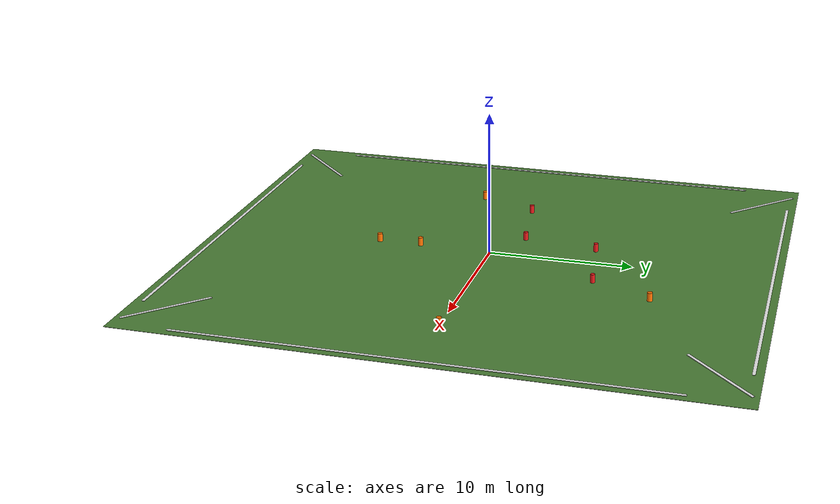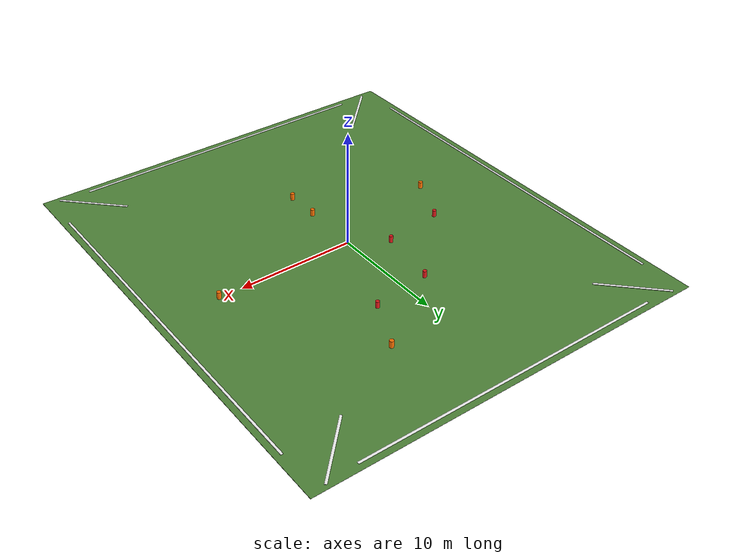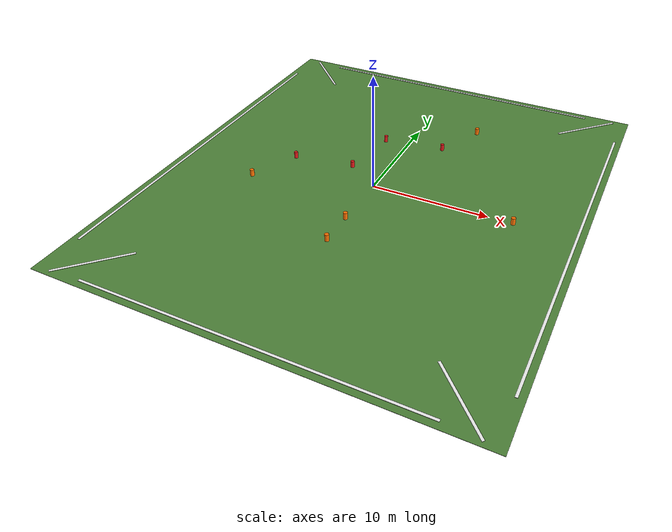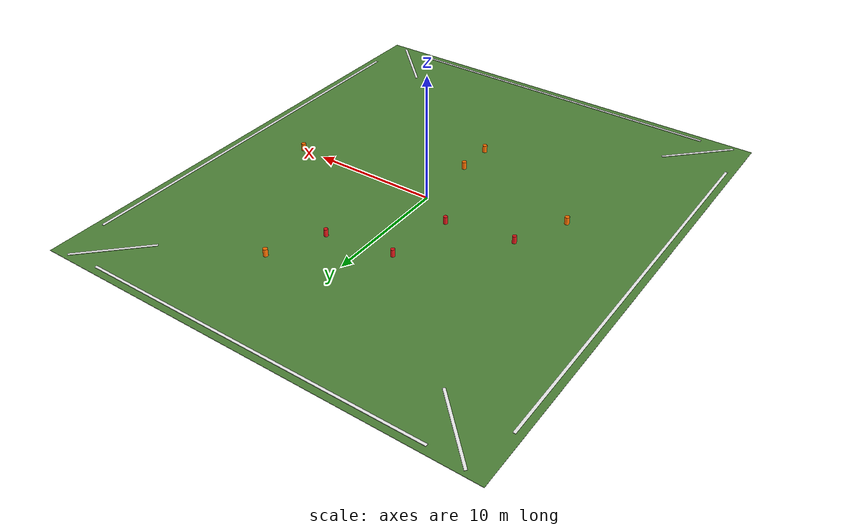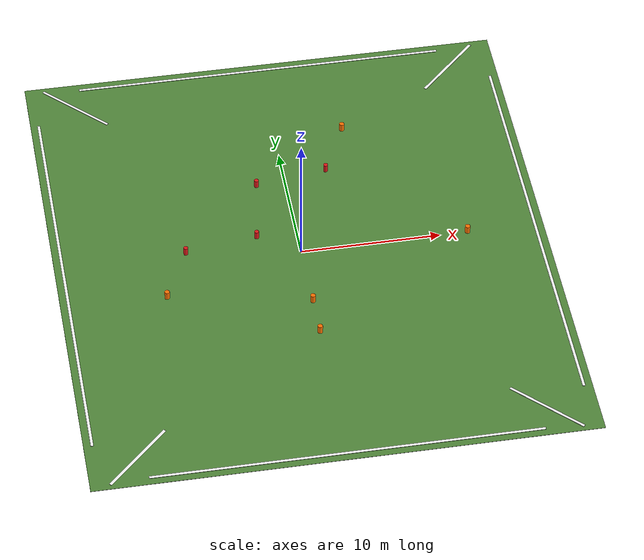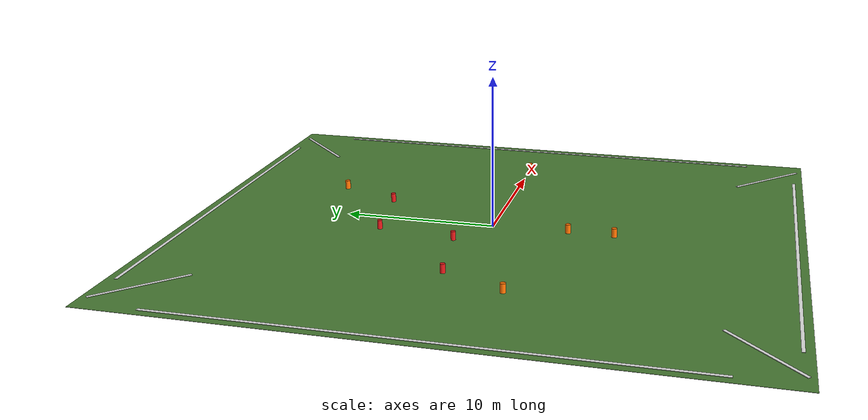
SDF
<?xml version="1.0" ?>
<sdf version="1.6">
  <world name="uwa_oval">

    <gravity>0 0 -9.8</gravity>
    <magnetic_field>6e-06 2.3e-05 -4.2e-05</magnetic_field>
    <physics type="ode">
      <max_step_size>0.001</max_step_size>
      <real_time_factor>1</real_time_factor>
      <real_time_update_rate>1000</real_time_update_rate>
    </physics>

    <plugin filename="gz-sim-sensors-system"
            name="gz::sim::systems::Sensors">
      <render_engine>ogre2</render_engine>
    </plugin>

    <scene>
      <ambient>0.5 0.5 0.5 1</ambient>
      <background>0.6 0.8 1.0 1</background>
      <shadows>true</shadows>
    </scene>

    <light name="sun" type="directional">
      <cast_shadows>true</cast_shadows>
      <pose>0 0 30 0 0 0</pose>
      <diffuse>0.9 0.9 0.9 1</diffuse>
      <specular>0.2 0.2 0.2 1</specular>
      <attenuation>
        <range>1000</range>
        <constant>0.9</constant>
        <linear>0.01</linear>
        <quadratic>0.001</quadratic>
      </attenuation>
      <direction>-0.35 0.2 -0.9</direction>
    </light>

    <!-- ═══════════════════════════════════════════════════════
         GROUND — 35 m (X) × 40 m (Y) grass surface
         ═══════════════════════════════════════════════════════ -->
    <model name="ground">
      <static>true</static>
      <link name="ground_link">
        <collision name="ground_collision">
          <geometry>
            <box><size>35 40 0.02</size></box>
          </geometry>
        </collision>
        <visual name="ground_visual">
          <geometry>
            <box><size>35 40 0.02</size></box>
          </geometry>
          <material>
            <!-- Grass green -->
            <ambient>0.28 0.48 0.20 1</ambient>
            <diffuse>0.33 0.55 0.24 1</diffuse>
            <specular>0.05 0.05 0.05 1</specular>
          </material>
        </visual>
      </link>
    </model>

    <model name="boundary">
      <static>true</static>
      <link name="boundary_link">

        <!-- Long sides (Y axis) -->
        <visual name="east_line">
          <pose>16.9 0 0.02 0 0 0</pose>
          <geometry><box><size>0.2 32 0.04</size></box></geometry>
          <material><ambient>1 1 1 1</ambient><diffuse>1 1 1 1</diffuse></material>
        </visual>
        <visual name="west_line">
          <pose>-16.9 0 0.02 0 0 0</pose>
          <geometry><box><size>0.2 32 0.04</size></box></geometry>
          <material><ambient>1 1 1 1</ambient><diffuse>1 1 1 1</diffuse></material>
        </visual>

        <!-- Short ends (X axis) -->
        <visual name="north_line">
          <pose>0 19.4 0.02 0 0 0</pose>
          <geometry><box><size>27 0.2 0.04</size></box></geometry>
          <material><ambient>1 1 1 1</ambient><diffuse>1 1 1 1</diffuse></material>
        </visual>
        <visual name="south_line">
          <pose>0 -19.4 0.02 0 0 0</pose>
          <geometry><box><size>27 0.2 0.04</size></box></geometry>
          <material><ambient>1 1 1 1</ambient><diffuse>1 1 1 1</diffuse></material>
        </visual>

        <!-- NE corner -->
        <visual name="corner_ne">
          <pose>14.0 17.5 0.02 0 0 -0.7854</pose>
          <geometry><box><size>0.2 6.0 0.04</size></box></geometry>
          <material><ambient>1 1 1 1</ambient><diffuse>1 1 1 1</diffuse></material>
        </visual>
        <!-- NW corner -->
        <visual name="corner_nw">
          <pose>-14.0 17.5 0.02 0 0 0.7854</pose>
          <geometry><box><size>0.2 6.0 0.04</size></box></geometry>
          <material><ambient>1 1 1 1</ambient><diffuse>1 1 1 1</diffuse></material>
        </visual>
        <!-- SE corner -->
        <visual name="corner_se">
          <pose>14.0 -17.5 0.02 0 0 0.7854</pose>
          <geometry><box><size>0.2 6.0 0.04</size></box></geometry>
          <material><ambient>1 1 1 1</ambient><diffuse>1 1 1 1</diffuse></material>
        </visual>
        <!-- SW corner -->
        <visual name="corner_sw">
          <pose>-14.0 -17.5 0.02 0 0 -0.7854</pose>
          <geometry><box><size>0.2 6.0 0.04</size></box></geometry>
          <material><ambient>1 1 1 1</ambient><diffuse>1 1 1 1</diffuse></material>
        </visual>

      </link>
    </model>

    <!-- wp1: (0, -8)  — 10.0 m from robot -->
    <model name="orange_cone_wp1">
      <static>true</static>
      <pose>0.0 -8.0 0 0 0 0</pose>
      <link name="link">
        <collision name="col">
          <pose>0 0 0.3 0 0 0</pose>
          <geometry><cylinder><radius>0.18</radius><length>0.6</length></cylinder></geometry>
        </collision>
        <visual name="vis">
          <pose>0 0 0.3 0 0 0</pose>
          <geometry><cylinder><radius>0.18</radius><length>0.6</length></cylinder></geometry>
          <material>
            <ambient>1.0 0.45 0.0 1</ambient>
            <diffuse>1.0 0.45 0.0 1</diffuse>
            <specular>0.2 0.2 0.2 1</specular>
          </material>
        </visual>
      </link>
    </model>

    <!-- wp2: (12, 0)  — 14.4 m from wp1 -->
    <model name="orange_cone_wp2">
      <static>true</static>
      <pose>12.0 0.0 0 0 0 0</pose>
      <link name="link">
        <collision name="col">
          <pose>0 0 0.3 0 0 0</pose>
          <geometry><cylinder><radius>0.18</radius><length>0.6</length></cylinder></geometry>
        </collision>
        <visual name="vis">
          <pose>0 0 0.3 0 0 0</pose>
          <geometry><cylinder><radius>0.18</radius><length>0.6</length></cylinder></geometry>
          <material>
            <ambient>1.0 0.45 0.0 1</ambient>
            <diffuse>1.0 0.45 0.0 1</diffuse>
            <specular>0.2 0.2 0.2 1</specular>
          </material>
        </visual>
      </link>
    </model>

    <!-- wp3: (5, 12)  — 13.9 m from wp2 -->
    <model name="orange_cone_wp3">
      <static>true</static>
      <pose>5.0 12.0 0 0 0 0</pose>
      <link name="link">
        <collision name="col">
          <pose>0 0 0.3 0 0 0</pose>
          <geometry><cylinder><radius>0.18</radius><length>0.6</length></cylinder></geometry>
        </collision>
        <visual name="vis">
          <pose>0 0 0.3 0 0 0</pose>
          <geometry><cylinder><radius>0.18</radius><length>0.6</length></cylinder></geometry>
          <material>
            <ambient>1.0 0.45 0.0 1</ambient>
            <diffuse>1.0 0.45 0.0 1</diffuse>
            <specular>0.2 0.2 0.2 1</specular>
          </material>
        </visual>
      </link>
    </model>

    <!-- wp4: (-10, -3) — 21.2 m from wp3  ← LARGER GAP / slalom zone -->
    <model name="orange_cone_wp4">
      <static>true</static>
      <pose>-10.0 -3.0 0 0 0 0</pose>
      <link name="link">
        <collision name="col">
          <pose>0 0 0.3 0 0 0</pose>
          <geometry><cylinder><radius>0.18</radius><length>0.6</length></cylinder></geometry>
        </collision>
        <visual name="vis">
          <pose>0 0 0.3 0 0 0</pose>
          <geometry><cylinder><radius>0.18</radius><length>0.6</length></cylinder></geometry>
          <material>
            <ambient>1.0 0.45 0.0 1</ambient>
            <diffuse>1.0 0.45 0.0 1</diffuse>
            <specular>0.2 0.2 0.2 1</specular>
          </material>
        </visual>
      </link>
    </model>

    <!-- wp5: (0, -5)  — 10.2 m from wp4 -->
    <model name="orange_cone_wp5">
      <static>true</static>
      <pose>0.0 -5.0 0 0 0 0</pose>
      <link name="link">
        <collision name="col">
          <pose>0 0 0.3 0 0 0</pose>
          <geometry><cylinder><radius>0.18</radius><length>0.6</length></cylinder></geometry>
        </collision>
        <visual name="vis">
          <pose>0 0 0.3 0 0 0</pose>
          <geometry><cylinder><radius>0.18</radius><length>0.6</length></cylinder></geometry>
          <material>
            <ambient>1.0 0.45 0.0 1</ambient>
            <diffuse>1.0 0.45 0.0 1</diffuse>
            <specular>0.2 0.2 0.2 1</specular>
          </material>
        </visual>
      </link>
    </model>

    <!-- rc1: t=0.20 right offset (+1.5 m) -->
    <model name="red_cone_1">
      <static>true</static>
      <pose>3.1 7.9 0 0 0 0</pose>
      <link name="link">
        <collision name="col">
          <pose>0 0 0.3 0 0 0</pose>
          <geometry><cylinder><radius>0.16</radius><length>0.6</length></cylinder></geometry>
        </collision>
        <visual name="vis">
          <pose>0 0 0.3 0 0 0</pose>
          <geometry><cylinder><radius>0.16</radius><length>0.6</length></cylinder></geometry>
          <material>
            <ambient>0.9 0.1 0.1 1</ambient>
            <diffuse>0.9 0.1 0.1 1</diffuse>
            <specular>0.2 0.2 0.2 1</specular>
          </material>
        </visual>
      </link>
    </model>

    <!-- rc2: t=0.40 left offset (-1.5 m) -->
    <model name="red_cone_2">
      <static>true</static>
      <pose>-2.1 7.1 0 0 0 0</pose>
      <link name="link">
        <collision name="col">
          <pose>0 0 0.3 0 0 0</pose>
          <geometry><cylinder><radius>0.16</radius><length>0.6</length></cylinder></geometry>
        </collision>
        <visual name="vis">
          <pose>0 0 0.3 0 0 0</pose>
          <geometry><cylinder><radius>0.16</radius><length>0.6</length></cylinder></geometry>
          <material>
            <ambient>0.9 0.1 0.1 1</ambient>
            <diffuse>0.9 0.1 0.1 1</diffuse>
            <specular>0.2 0.2 0.2 1</specular>
          </material>
        </visual>
      </link>
    </model>

    <!-- rc3: t=0.60 right offset (+1.5 m) -->
    <model name="red_cone_3">
      <static>true</static>
      <pose>-2.9 1.9 0 0 0 0</pose>
      <link name="link">
        <collision name="col">
          <pose>0 0 0.3 0 0 0</pose>
          <geometry><cylinder><radius>0.16</radius><length>0.6</length></cylinder></geometry>
        </collision>
        <visual name="vis">
          <pose>0 0 0.3 0 0 0</pose>
          <geometry><cylinder><radius>0.16</radius><length>0.6</length></cylinder></geometry>
          <material>
            <ambient>0.9 0.1 0.1 1</ambient>
            <diffuse>0.9 0.1 0.1 1</diffuse>
            <specular>0.2 0.2 0.2 1</specular>
          </material>
        </visual>
      </link>
    </model>

    <!-- rc4: t=0.80 left offset (-1.5 m) -->
    <model name="red_cone_4">
      <static>true</static>
      <pose>-8.1 1.1 0 0 0 0</pose>
      <link name="link">
        <collision name="col">
          <pose>0 0 0.3 0 0 0</pose>
          <geometry><cylinder><radius>0.16</radius><length>0.6</length></cylinder></geometry>
        </collision>
        <visual name="vis">
          <pose>0 0 0.3 0 0 0</pose>
          <geometry><cylinder><radius>0.16</radius><length>0.6</length></cylinder></geometry>
          <material>
            <ambient>0.9 0.1 0.1 1</ambient>
            <diffuse>0.9 0.1 0.1 1</diffuse>
            <specular>0.2 0.2 0.2 1</specular>
          </material>
        </visual>
      </link>
    </model>

    <!-- Robot spawned by sim_bringup.launch.py at (0, -18, 0.25) facing north -->

    <gui fullscreen="0">
      <camera name="user_camera">
        <!-- Top-down overview of entire oval -->
        <pose>0 0 55 0 1.5707 0</pose>
        <view_controller>orbit</view_controller>
        <projection_type>perspective</projection_type>
      </camera>
    </gui>

  </world>
</sdf>
